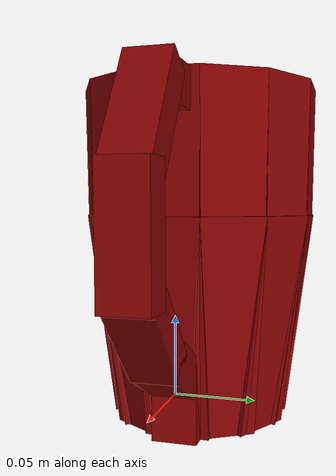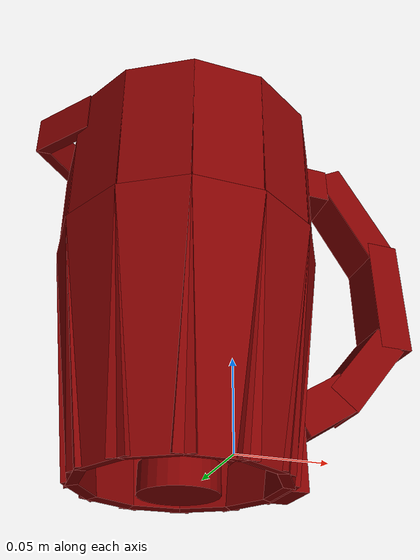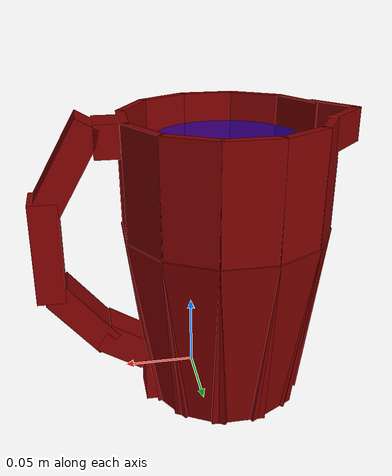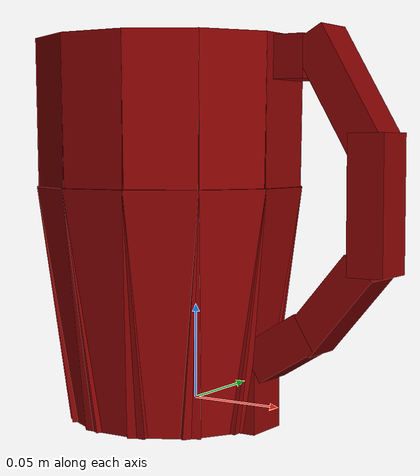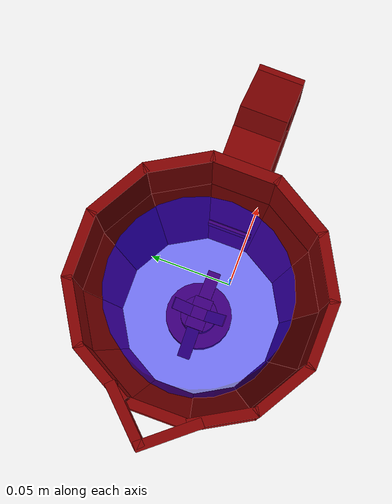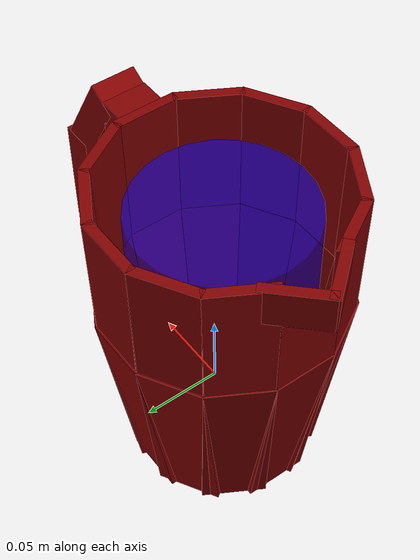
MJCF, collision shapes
<mujoco model="model">
  <option timestep="0.002" gravity="0.0 0.0 -9.81"/>
  <compiler angle="radian"/>
  <asset>
    <mesh file="visuals/blade.obj" name="blade_vis"/>
    <mesh file="visuals/pitcher.obj" name="pitcher_vis"/>
    <mesh file="visuals/pitcher_main.obj" name="pitcher_main_vis"/>
    <texture file="visuals/T_BC001.png" name="pitcher_material" type="2d"/>
    <material name="pitcher_material" rgba="1 1 1 1.0" texture="pitcher_material" shininess="0.4472135901451111" specular="1"/>
    <texture file="visuals/T_BC001.png" name="blade_material" type="2d"/>
    <material name="blade_material" rgba="1 1 1 1.0" texture="blade_material" shininess="0.4472135901451111" specular="2"/>
    <texture file="visuals/T_BC001.png" name="pitcher_main_material" type="2d"/>
    <material name="pitcher_main_material" rgba="1 1 1 0.75" texture="pitcher_main_material" shininess="0.4472135901451111" specular="0.3103448502657381"/>
  </asset>
  <default>
    <default class="visual">
      <geom conaffinity="0" contype="0" group="1" type="mesh"/>
    </default>
    <default class="collision">
      <geom group="0" rgba="0.5 0 0 0.5" density="1.0" solref="0.004 1" solimp="0.998 0.998 0.001"/>
    </default>
    <default class="spawn">
      <geom group="0" rgba="1 1 1 0.5" contype="0" conaffinity="0"/>
      <site group="0" rgba="1 1 1 0.5"/>
    </default>
    <default class="region">
      <geom group="1" conaffinity="0" contype="0" rgba="0 1 0 0" mass="0"/>
    </default>
  </default>
  <worldbody>
    <body>
      <body name="object">
        <body name="pitcher">
          <geom mesh="pitcher_vis" type="mesh" solimp="0.998 0.998 0.001" solref="0.001 1" friction="0.95 0.3 0.1" class="visual" material="pitcher_material"/>
          <geom type="cylinder" pos="-0.02371910959482193 0.011068562977015972 -0.011649996042251587" size="0.02007598802447319 0.007151107303798199" quat="1.0 0.0 0.0 0.0" class="collision"/>
          <geom type="cylinder" pos="-0.02371910959482193 0.011068563908338547 0.0016762830782681704" size="0.01112541276961565 0.007151929661631584" quat="1.0 0.0 0.0 0.0" class="collision"/>
          <geom class="collision" type="box" pos="0.09918984770774841 0.010972322896122932 0.10551890730857849" size="0.009761814959347248 0.01324785128235817 0.03547469154000282" quat="1.0 0.0 0.0 0.0" name="pitcher_handle_2"/>
          <geom class="collision" type="box" pos="0.05492480471730232 0.010972313582897186 0.17936070263385773" size="0.009761814959347248 0.01324781496077776 0.01113841775804758" quat="1.0 0.0 0.0 0.0" name="pitcher_handle_4"/>
          <geom class="collision" type="box" pos="0.0828954428434372 0.010972315445542336 0.1612357199192047" size="0.009761814028024673 0.01324781496077776 0.03325482830405235" quat="0.966143786907196 2.69347604556745e-15 -0.25800421833992004 -3.4665141868117644e-08" name="pitcher_handle_3"/>
          <geom class="collision" type="box" pos="0.07884078472852707 0.01097233034670353 0.054684676229953766" size="0.009761815890669823 0.01324781496077776 0.026281777769327164" quat="0.9396926164627075 -6.4034441438827906e-15 0.3420201241970062 4.59534597041511e-08" name="pitcher_handle_1"/>
          <geom class="collision" type="box" pos="0.050518956035375595 0.010972334071993828 0.03077288344502449" size="0.0108710415661335 0.01324781496077776 0.018037976697087288" quat="0.8716132044792175 -1.8901147194692186e-14 0.4901942312717438 6.586184753132329e-08" name="pitcher_handle_0"/>
          <geom type="box" pos="0.03289134055376053 0.010972335934638977 0.007667149417102337" size="0.004690803121775389 0.01324781496077776 0.023297293111681938" quat="1.0 0.0 0.0 0.0" class="collision"/>
          <body name="blade">
            <geom mesh="blade_vis" type="mesh" solimp="0.998 0.998 0.001" solref="0.001 1" friction="0.95 0.3 0.1" class="visual" material="blade_material"/>
            <geom type="box" pos="-0.023458171635866165 0.010972345247864723 0.014321236871182919" size="0.00963058602064848 0.00569922337308526 0.0008714227005839348" quat="1.0 0.0 0.0 0.0" class="collision"/>
            <geom type="box" pos="-0.0053266193717718124 0.010972345247864723 0.0070035699754953384" size="0.011695402674376965 0.0039033922366797924 0.0008714226423762739" quat="0.9396926164627075 -8.309776071456845e-15 0.342020183801651 4.595345615143742e-08" class="collision"/>
            <geom type="box" pos="-0.041705138981342316 0.010972345247864723 0.0070035699754953384" size="0.011695402674376965 0.0039033922366797924 0.0008714226423762739" quat="0.9396926164627075 -7.229702337556258e-15 -0.342020183801651 -4.59534099661596e-08" class="collision"/>
            <geom type="box" pos="-0.023458171635866165 0.010972345247864723 0.015489095821976662" size="0.0034575453028082848 0.0056992084719240665 0.00036451281630434096" quat="1.0 0.0 0.0 0.0" class="collision"/>
            <geom type="box" pos="-0.023458171635866165 0.000928766094148159 0.02140624076128006" size="0.0034575453028082848 0.008669809438288212 0.00036451281630434096" quat="0.919166088104248 -0.39387020468711853 -8.745675399149245e-17 -5.160514655080997e-24" class="collision"/>
            <geom type="box" pos="-0.023458171635866165 0.02114049345254898 0.02140624076128006" size="0.0034575453028082848 0.008669809438288212 0.00036451275809668005" quat="0.4017453193664551 -0.9157514572143555 -2.0333765729179347e-16 1.967528118198305e-23" class="collision"/>
          </body>
          <body name="pitcher_main">
            <geom class="region" type="cylinder" size="0.051500000059604645 0.0732329934835434" pos="-0.023453088477253914 0.010936793871223927 0.1015644520521164" rgba="0 0 1 0.5" name="reg_int"/>
            <geom mesh="pitcher_main_vis" type="mesh" solimp="0.998 0.998 0.001" solref="0.001 1" friction="0.95 0.3 0.1" class="visual" material="pitcher_main_material"/>
            <geom type="box" pos="-0.081379733979702 0.010130036622285843 0.049280185252428055" size="0.0029590476769953966 0.01903216540813446 0.06470920145511627" quat="0.9974465370178223 -1.1931020221404376e-15 -0.07141713798046112 -9.595525263250693e-09" class="collision"/>
            <geom type="box" pos="-0.0976974368095398 0.02441496029496193 0.18065233528614044" size="0.0029584099538624287 0.019032161682844162 0.011675574816763401" quat="0.9238548874855042 -0.0027946368791162968 -0.006746850907802582 -0.3826732039451599" class="collision"/>
            <geom type="box" pos="-0.09015580266714096 0.010130021721124649 0.13765649497509003" size="0.002958660013973713 0.019032161682844162 0.02560451254248619" quat="0.9999733567237854 -2.5554136985714987e-16 -0.007302739657461643 -9.811875756327026e-10" class="collision"/>
            <geom type="box" pos="-0.07352063804864883 -0.019200507551431656 0.049280185252428055" size="0.002959047444164753 0.01903216540813446 0.06470920145511627" quat="0.9634593725204468 0.018484115600585938 -0.06898367404937744 0.2581581175327301" class="collision"/>
            <geom type="box" pos="-0.08112091571092606 -0.023588556796312332 0.15112878382205963" size="0.0029588767793029547 0.019032159820199013 0.04057501256465912" quat="0.9659000635147095 0.0018900875002145767 -0.007053904235363007 0.25881218910217285" class="collision"/>
            <geom type="box" pos="-0.0520491823554039 -0.04067195579409599 0.049280185252428055" size="0.0029590476769953966 0.01903216540813446 0.06470920145511627" quat="0.8638140559196472 0.03570856153964996 -0.06184906139969826 0.49872323870658875" class="collision"/>
            <geom type="box" pos="-0.05643719807267189 -0.0482722632586956 0.15112878382205963" size="0.0029588770121335983 0.01903216354548931 0.04057501256465912" quat="0.8660022616386414 0.0036513686645776033 -0.006324354093521833 0.4999867379665375" class="collision"/>
            <geom type="box" pos="-0.022718632593750954 -0.048531051725149155 0.049280185252428055" size="0.0029590476769953966 0.01903216540813446 0.06470920145511627" quat="0.7053011655807495 0.050499554723501205 -0.05049955099821091 0.7053012847900391" class="collision"/>
            <geom type="box" pos="-0.022718612104654312 -0.05730711668729782 0.15112878382205963" size="0.0029588770121335983 0.019032161682844162 0.04057501256465912" quat="0.7070879340171814 0.0051638162694871426 -0.005163814406841993 0.7070879340171814" class="collision"/>
            <geom type="box" pos="0.006611908320337534 -0.04067195951938629 0.049280185252428055" size="0.0029590476769953966 0.01903216540813446 0.06470920145511627" quat="0.4987233579158783 0.061849042773246765 -0.03570856153964996 0.8638139963150024" class="collision"/>
            <geom type="box" pos="0.010999966412782669 -0.048272233456373215 0.15112878382205963" size="0.0029588770121335983 0.019032161682844162 0.04057501256465912" quat="0.4999866485595703 0.006324364338070154 -0.0036513707600533962 0.8660023212432861" class="collision"/>
            <geom type="box" pos="0.028083357959985733 -0.01920049823820591 0.049280185252428055" size="0.0029590476769953966 0.01903216540813446 0.06470920145511627" quat="0.2581581771373749 0.06898364424705505 -0.01848411187529564 0.9634593725204468" class="collision"/>
            <geom type="box" pos="0.035683661699295044 -0.023588523268699646 0.15112878382205963" size="0.0029588770121335983 0.019032161682844162 0.04057501256465912" quat="0.25881215929985046 0.007053910288959742 -0.0018900894792750478 0.9659000635147095" class="collision"/>
            <geom type="box" pos="0.03594245761632919 0.010130045004189014 0.049280185252428055" size="0.0029590476769953966 0.01903216540813446 0.06470920145511627" quat="7.525567013999535e-08 0.07141713798046112 -4.701265154949397e-09 0.9974465370178223" class="collision"/>
            <geom type="box" pos="0.04471852630376816 0.010130072943866253 0.15112878382205963" size="0.0029588770121335983 0.019032161682844162 0.04057501256465912" quat="7.549594016609262e-08 -0.007302730809897184 -5.585061857438234e-10 -0.9999733567237854" class="collision"/>
            <geom type="box" pos="0.02808336168527603 0.039460599422454834 0.049280185252428055" size="0.0029590476769953966 0.01903216540813446 0.06470920145511627" quat="0.2581581771373749 -0.06898365169763565 -0.018484117463231087 -0.9634593725204468" class="collision"/>
            <geom type="box" pos="0.035683635622262955 0.04384865611791611 0.15112878382205963" size="0.0029588770121335983 0.019032161682844162 0.04057501256465912" quat="0.25881227850914 -0.0070538888685405254 -0.0018900844734162092 -0.9659000039100647" class="collision"/>
            <geom type="box" pos="0.0066118971444666386 0.06093205511569977 0.049280185252428055" size="0.0029590476769953966 0.01903216540813446 0.06470920145511627" quat="0.4987233579158783 -0.06184905394911766 -0.03570856899023056 -0.8638139963150024" class="collision"/>
            <geom type="box" pos="0.010999917984008789 0.06853236258029938 0.15112878382205963" size="0.0029588770121335983 0.019032161682844162 0.04057501256465912" quat="0.4999867379665375 -0.006324357818812132 -0.003651369595900178 -0.8660022616386414" class="collision"/>
            <geom type="box" pos="-0.022718647494912148 0.06879114359617233 0.049280185252428055" size="0.0029590476769953966 0.01903216540813446 0.06470920145511627" quat="0.7053011655807495 -0.05049954727292061 -0.05049953982234001 -0.7053012847900391" class="collision"/>
            <geom type="box" pos="-0.02271866239607334 0.0775672122836113 0.15112878382205963" size="0.0029588770121335983 0.019032161682844162 0.04057501256465912" quat="0.7070879340171814 -0.005163815338164568 -0.005163813941180706 -0.7070879340171814" class="collision"/>
            <geom type="box" pos="-0.05204921215772629 0.06093202531337738 0.049280185252428055" size="0.002959047444164753 0.01903216727077961 0.06470920145511627" quat="0.8638140559196472 -0.03570856153964996 -0.061849068850278854 -0.49872323870658875" class="collision"/>
            <geom type="box" pos="-0.056437261402606964 0.0685323104262352 0.15112878382205963" size="0.0029588770121335983 0.01903216354548931 0.04057501256465912" quat="0.8660024404525757 -0.0036513670347630978 -0.006324354559183121 -0.499986469745636" class="collision"/>
            <geom type="box" pos="-0.07352064549922943 0.039460569620132446 0.049280185252428055" size="0.002959047444164753 0.01903216540813446 0.06470920145511627" quat="0.9634594321250916 -0.018484100699424744 -0.06898365169763565 -0.25815802812576294" class="collision"/>
            <geom type="box" pos="-0.08112095296382904 0.043848585337400436 0.15112878382205963" size="0.0029588767793029547 0.019032161682844162 0.04057501256465912" quat="0.9659001231193542 -0.0018900863360613585 -0.007053903304040432 -0.2588120102882385" class="collision"/>
            <geom type="box" pos="-0.09945792704820633 -0.0003995802253484726 0.18065233528614044" size="0.002958409721031785 0.019032161682844162 0.011675574816763401" quat="0.9396675825119019 0.002497683744877577 -0.006862326990813017 0.342011034488678" class="collision"/>
          </body>
        </body>
        <geom class="region" name="reg_bbox" density="0" type="box" pos="0.0 0.010209 0.0855365" size="0.111086 0.069651 0.1078545"/>
      </body>
      <site rgba="0 1 0 0" size="0.005" pos="-0.0185759 0.01097328 0.19138097" name="anchor_site"/>
    </body>
  </worldbody>
</mujoco>
